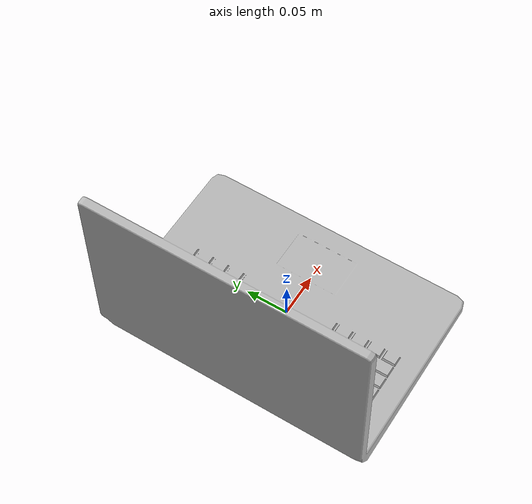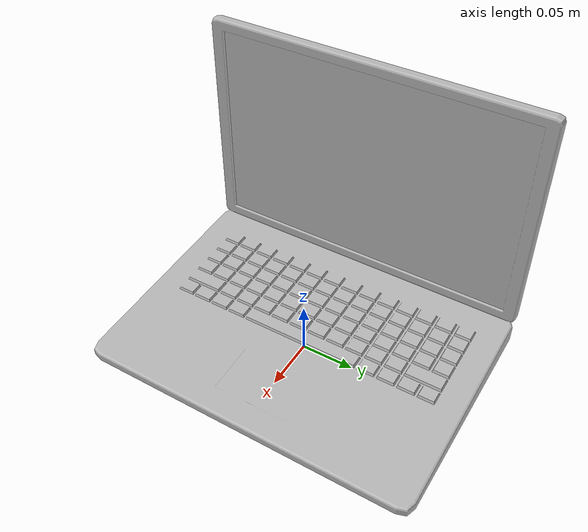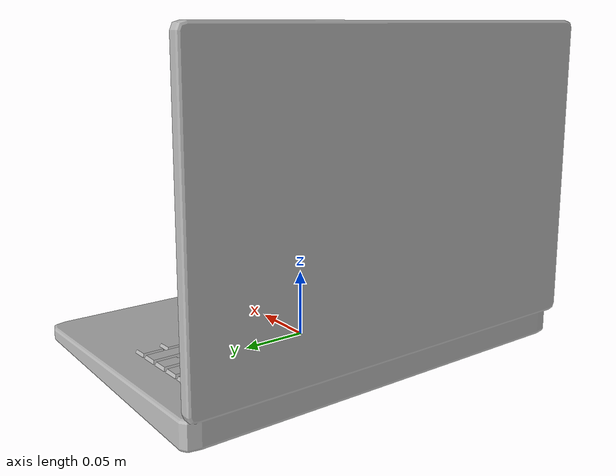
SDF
<?xml version='1.0'?>
<sdf version='1.4'>
  <model name='120'>
    <pose>0 0 0 0 0 0</pose>
    <static>true</static>
    <link name='link'>
      <collision name='collision'>
        <pose>0 0 0 0 0 0</pose>
        <geometry>
          <box>
            <size>0.225973 0.32 2</size>
          </box>
        </geometry>
      </collision>
      <visual name='visual'>
        <pose>0 0 0 0 0 0</pose>
        <geometry>
          <mesh><uri>model://120/120.dae</uri></mesh>
        </geometry>
      </visual>
    </link>
  </model>
</sdf>
